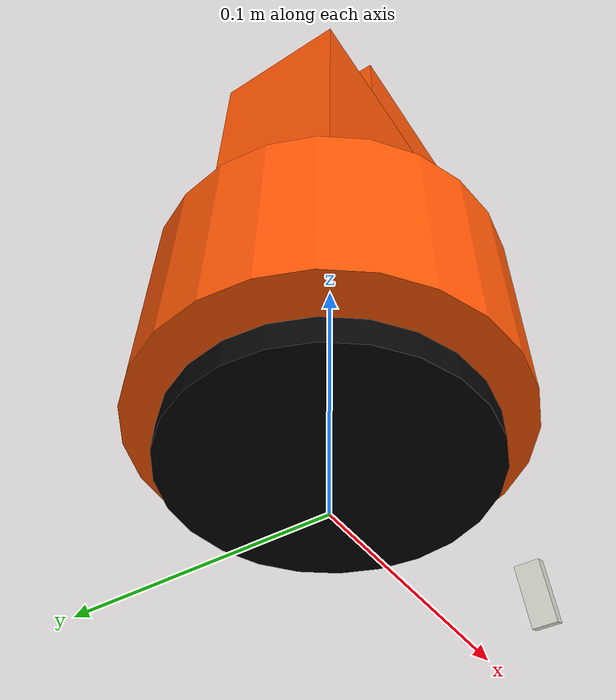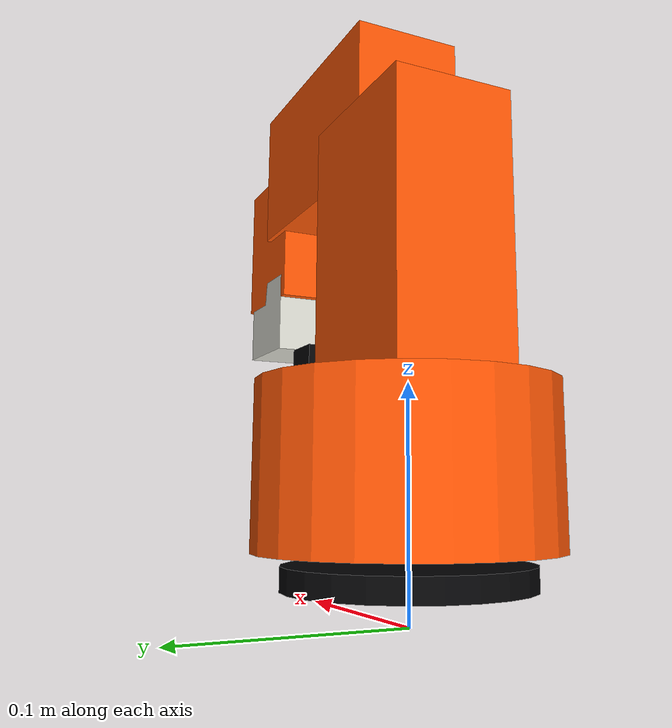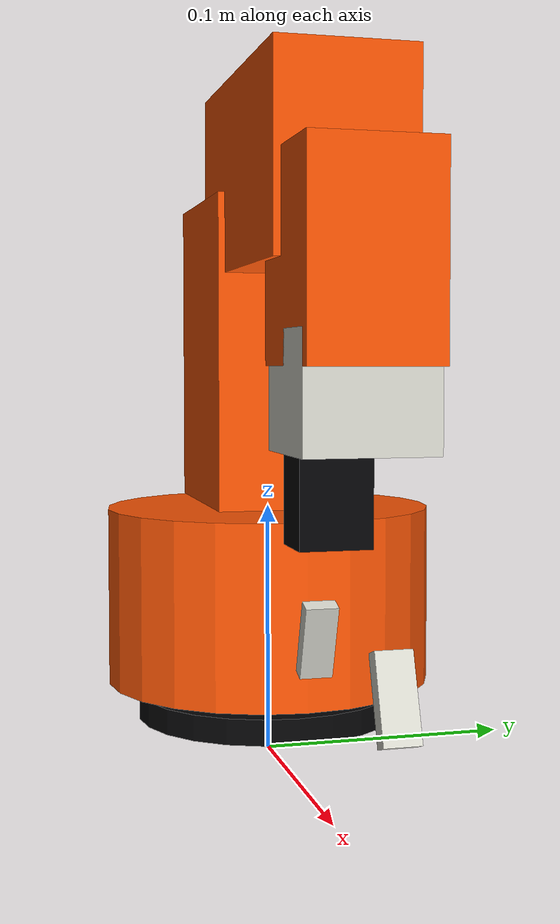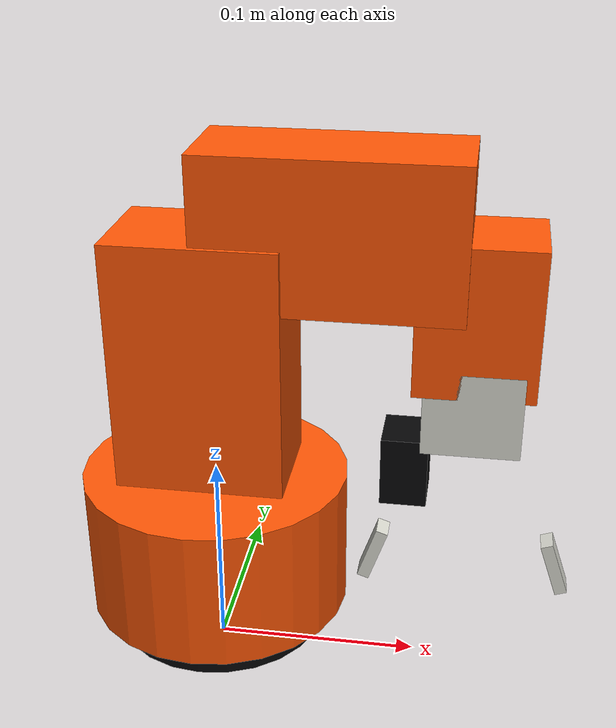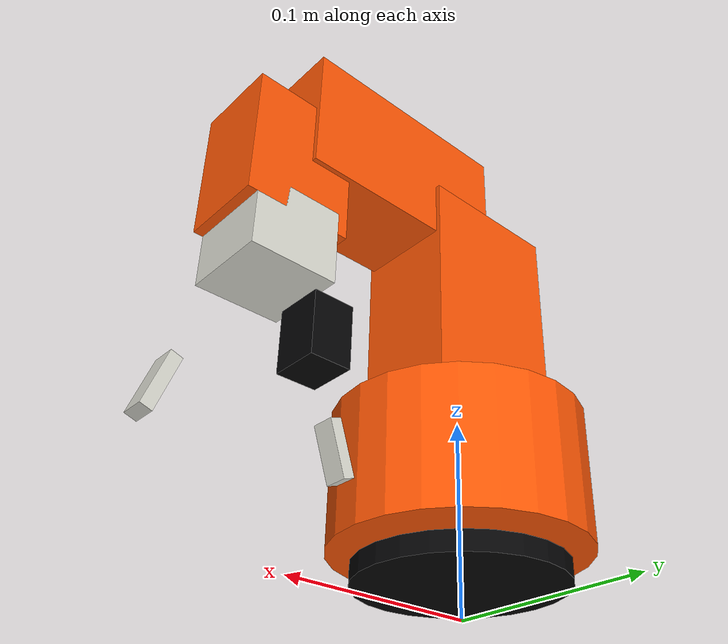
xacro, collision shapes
<?xml version="1.0"?>
<robot xmlns:xacro="http://www.ros.org/wiki/xacro" name="unoq_braccio">
  <xacro:arg name="controllers_file" default=""/>
  <xacro:arg name="mesh_dir" default=""/>
  <!-- For joint_state_publisher_gui only. Hides the left finger slider and drives it from "gripper". -->
  <xacro:arg name="gui_mimic" default="false"/>

  <material name="orange"><color rgba="1.0 0.34 0.02 1"/></material>
  <material name="white"><color rgba="0.86 0.86 0.82 1"/></material>
  <material name="black"><color rgba="0.02 0.02 0.025 1"/></material>
  <material name="lens_blue"><color rgba="0.08 0.28 0.55 1"/></material>

  <xacro:macro name="box_inertial" params="mass x y z">
    <inertial>
      <mass value="${mass}"/>
      <inertia
        ixx="${mass * (y * y + z * z) / 12.0}"
        iyy="${mass * (x * x + z * z) / 12.0}"
        izz="${mass * (x * x + y * y) / 12.0}"
        ixy="0" ixz="0" iyz="0"/>
    </inertial>
  </xacro:macro>

  <xacro:macro name="mesh_visual" params="filename material x y z rr rp ry">
    <visual>
      <origin xyz="${x} ${y} ${z}" rpy="${rr} ${rp} ${ry}"/>
      <geometry>
        <mesh filename="file://$(arg mesh_dir)/${filename}" scale="0.001 0.001 0.001"/>
      </geometry>
      <material name="${material}"/>
    </visual>
  </xacro:macro>

  <link name="world"/>

  <link name="base_link">
    <visual>
      <geometry><cylinder length="0.01" radius="0.053"/></geometry>
      <material name="black"/>
    </visual>
    <collision>
      <geometry><cylinder length="0.01" radius="0.053"/></geometry>
    </collision>
    <inertial>
      <mass value="2"/>
      <inertia ixx="0.004" ixy="0" ixz="0" iyy="0.004" iyz="0" izz="0.004"/>
    </inertial>
  </link>

  <joint name="base_fixed" type="fixed">
    <parent link="world"/>
    <child link="base_link"/>
    <origin xyz="0 0 0.02" rpy="0 0 -1.5708"/>
  </joint>

  <link name="braccio_base_link">
    <xacro:mesh_visual filename="braccio_base.stl" material="orange" x="0" y="0.004" z="0" rr="0" rp="0" ry="3.1416"/>
    <collision>
      <origin xyz="0 0 0.035"/>
      <geometry><cylinder radius="0.065" length="0.07"/></geometry>
    </collision>
    <inertial>
      <mass value="2"/>
      <inertia ixx="0.004" ixy="0" ixz="0" iyy="0.004" iyz="0" izz="0.004"/>
    </inertial>
  </link>

  <link name="shoulder_link">
    <xacro:mesh_visual filename="braccio_shoulder.stl" material="orange" x="-0.0045" y="0.0055" z="-0.026" rr="0" rp="0" ry="0"/>
    <collision>
      <origin xyz="0 0 0.06"/>
      <geometry><box size="0.055 0.08 0.12"/></geometry>
    </collision>
    <xacro:box_inertial mass="0.1" x="0.055" y="0.08" z="0.12"/>
  </link>

  <link name="elbow_link">
    <xacro:mesh_visual filename="braccio_elbow.stl" material="orange" x="-0.0045" y="0.005" z="-0.025" rr="0" rp="0" ry="0"/>
    <collision>
      <origin xyz="0 0 0.06"/>
      <geometry><box size="0.05 0.07 0.12"/></geometry>
    </collision>
    <xacro:box_inertial mass="0.1" x="0.05" y="0.07" z="0.12"/>
  </link>

  <link name="wrist_pitch_link">
    <xacro:mesh_visual filename="braccio_wrist_pitch.stl" material="orange" x="0.003" y="-0.0004" z="-0.024" rr="0" rp="0" ry="0"/>
    <collision>
      <origin xyz="0 0 0.035"/>
      <geometry><box size="0.045 0.055 0.07"/></geometry>
    </collision>
    <xacro:box_inertial mass="0.08" x="0.045" y="0.055" z="0.07"/>
  </link>

  <link name="wrist_roll_link">
    <xacro:mesh_visual filename="braccio_wrist_roll.stl" material="white" x="0.006" y="0" z="0" rr="0" rp="0" ry="0"/>
    <collision>
      <origin xyz="0 0 0.018"/>
      <geometry><box size="0.045 0.045 0.04"/></geometry>
    </collision>
    <xacro:box_inertial mass="0.08" x="0.045" y="0.045" z="0.04"/>
  </link>

  <link name="right_gripper_link">
    <xacro:mesh_visual filename="braccio_right_gripper.stl" material="white" x="0" y="-0.012" z="0.010" rr="0" rp="1.5708" ry="0"/>
    <collision>
      <origin xyz="0.0836 0 0.0110" rpy="0 -0.2198 0"/>
      <geometry><box size="0.028 0.012 0.006"/></geometry>
    </collision>
    <xacro:box_inertial mass="0.03" x="0.08" y="0.012" z="0.014"/>
  </link>

  <link name="left_gripper_link">
    <xacro:mesh_visual filename="braccio_left_gripper.stl" material="white" x="0" y="-0.012" z="0" rr="0" rp="1.5708" ry="0"/>
    <!-- Mirror of the right finger pad. -->
    <collision>
      <origin xyz="0.0836 0 -0.0110" rpy="0 0.2198 0"/>
      <geometry><box size="0.028 0.012 0.006"/></geometry>
    </collision>
    <xacro:box_inertial mass="0.03" x="0.08" y="0.012" z="0.014"/>
  </link>

  <link name="camera_link">
    <visual>
      <origin xyz="0 0 0"/>
      <geometry><box size="0.034 0.026 0.022"/></geometry>
      <material name="black"/>
    </visual>
    <visual>
      <origin xyz="0.018 0 0" rpy="0 1.5708 0"/>
      <geometry><cylinder radius="0.008" length="0.006"/></geometry>
      <material name="lens_blue"/>
    </visual>
    <collision><geometry><box size="0.034 0.026 0.022"/></geometry></collision>
    <xacro:box_inertial mass="0.04" x="0.034" y="0.026" z="0.022"/>
  </link>

  <joint name="base" type="revolute">
    <axis xyz="0 0 1"/>
    <limit effort="10" lower="-1.5708" upper="1.5708" velocity="2"/>
    <origin xyz="0 0 0.01" rpy="0 0 0"/>
    <parent link="base_link"/>
    <child link="braccio_base_link"/>
    <dynamics damping="0.1" friction="0.001"/>
  </joint>

  <joint name="shoulder" type="revolute">
    <axis xyz="1 0 0"/>
    <limit effort="10" lower="0.2618" upper="2.8798" velocity="2"/>
    <origin xyz="0 -0.002 0.072" rpy="-1.5708 0 0"/>
    <parent link="braccio_base_link"/>
    <child link="shoulder_link"/>
    <dynamics damping="0.1" friction="0.001"/>
  </joint>

  <joint name="elbow" type="revolute">
    <axis xyz="1 0 0"/>
    <limit effort="10" lower="0.0" upper="3.1416" velocity="2"/>
    <origin xyz="0 0 0.125" rpy="-1.5708 0 0"/>
    <parent link="shoulder_link"/>
    <child link="elbow_link"/>
    <dynamics damping="0.1" friction="0.001"/>
  </joint>

  <joint name="wrist_vertical" type="revolute">
    <axis xyz="1 0 0"/>
    <limit effort="10" lower="0.0" upper="3.1416" velocity="2"/>
    <origin xyz="0 0 0.125" rpy="-1.5708 0 0"/>
    <parent link="elbow_link"/>
    <child link="wrist_pitch_link"/>
    <dynamics damping="0.1" friction="0.001"/>
  </joint>

  <joint name="wrist_rotation" type="revolute">
    <axis xyz="0 0 -1"/>
    <limit effort="5" lower="-1.5708" upper="1.5708" velocity="2"/>
    <origin xyz="0 0 0.06" rpy="0 0 1.5708"/>
    <parent link="wrist_pitch_link"/>
    <child link="wrist_roll_link"/>
    <dynamics damping="0.1" friction="0.001"/>
  </joint>

  <joint name="gripper" type="revolute">
    <axis xyz="0 -1 0"/>
    <limit effort="1" lower="0.1750" upper="1.2741" velocity="2"/>
    <origin xyz="0.010 0 0.03" rpy="0 -0.2967 0"/>
    <parent link="wrist_roll_link"/>
    <child link="right_gripper_link"/>
    <dynamics damping="0.1" friction="0.001"/>
  </joint>

  <joint name="left_gripper" type="revolute">
    <axis xyz="0 1 0"/>
    <!-- Driven with the same angle as "gripper" by joint_trajectory_bridge. The flipped
         frame (pi + 0.2967) and reversed axis make equal angles a mirror image. -->
    <limit effort="1" lower="0.1750" upper="1.2741" velocity="2"/>
    <origin xyz="-0.010 0 0.03" rpy="0 3.4383 0"/>
    <parent link="wrist_roll_link"/>
    <child link="left_gripper_link"/>
    <xacro:if value="$(arg gui_mimic)">
      <mimic joint="gripper" multiplier="1" offset="0"/>
    </xacro:if>
    <dynamics damping="0.1" friction="0.001"/>
  </joint>

  <joint name="camera_mount" type="fixed">
    <parent link="wrist_roll_link"/>
    <child link="camera_link"/>
    <origin xyz="0.03 0 0.055" rpy="0 -1.5708 0"/>
  </joint>

  <ros2_control name="GazeboSystem" type="system">
    <hardware>
      <plugin>gz_ros2_control/GazeboSimSystem</plugin>
    </hardware>
    <joint name="base">
      <command_interface name="position"/>
      <state_interface name="position">
        <param name="initial_value">0.0</param>
      </state_interface>
      <state_interface name="velocity"/>
    </joint>
    <joint name="shoulder">
      <command_interface name="position"/>
      <state_interface name="position">
        <param name="initial_value">1.5708</param>
      </state_interface>
      <state_interface name="velocity"/>
    </joint>
    <joint name="elbow">
      <command_interface name="position"/>
      <state_interface name="position">
        <param name="initial_value">1.5708</param>
      </state_interface>
      <state_interface name="velocity"/>
    </joint>
    <joint name="wrist_vertical">
      <command_interface name="position"/>
      <state_interface name="position">
        <param name="initial_value">1.5708</param>
      </state_interface>
      <state_interface name="velocity"/>
    </joint>
    <joint name="wrist_rotation">
      <command_interface name="position"/>
      <state_interface name="position">
        <param name="initial_value">0.0</param>
      </state_interface>
      <state_interface name="velocity"/>
    </joint>
    <joint name="gripper">
      <command_interface name="position"/>
      <state_interface name="position">
        <param name="initial_value">0.3399</param>
      </state_interface>
      <state_interface name="velocity"/>
    </joint>
    <joint name="left_gripper">
      <command_interface name="position"/>
      <state_interface name="position">
        <param name="initial_value">0.3399</param>
      </state_interface>
      <state_interface name="velocity"/>
    </joint>
  </ros2_control>

  <!-- Servos hold their pose; do not let gravity sag the simulated arm. -->
  <xacro:macro name="no_gravity" params="link">
    <gazebo reference="${link}"><gravity>false</gravity></gazebo>
  </xacro:macro>
  <xacro:no_gravity link="braccio_base_link"/>
  <xacro:no_gravity link="shoulder_link"/>
  <xacro:no_gravity link="elbow_link"/>
  <xacro:no_gravity link="wrist_pitch_link"/>
  <xacro:no_gravity link="wrist_roll_link"/>
  <xacro:no_gravity link="right_gripper_link"/>
  <xacro:no_gravity link="left_gripper_link"/>
  <xacro:no_gravity link="camera_link"/>

  <!-- High-friction finger pads so a squeezed cube does not slide out. -->
  <xacro:macro name="finger_friction" params="link">
    <gazebo reference="${link}">
      <mu1>2.0</mu1>
      <mu2>2.0</mu2>
    </gazebo>
  </xacro:macro>
  <xacro:finger_friction link="right_gripper_link"/>
  <xacro:finger_friction link="left_gripper_link"/>

  <xacro:macro name="cube_grasp" params="color">
    <gazebo>
      <plugin filename="gz-sim-detachable-joint-system" name="gz::sim::systems::DetachableJoint">
        <parent_link>wrist_roll_link</parent_link>
        <child_model>${color}_cube</child_model>
        <child_link>link</child_link>
        <attach_topic>/sim/grasp/${color}_cube/attach</attach_topic>
        <detach_topic>/sim/grasp/${color}_cube/detach</detach_topic>
        <output_topic>/sim/grasp/${color}_cube/state</output_topic>
      </plugin>
    </gazebo>
  </xacro:macro>
  <xacro:cube_grasp color="red"/>
  <xacro:cube_grasp color="blue"/>
  <xacro:cube_grasp color="yellow"/>

  <!-- Gripper-mounted camera (matches the real Grove Vision AI on the gripper). -->
  <gazebo reference="camera_link">
    <sensor name="gripper_camera" type="camera">
      <always_on>true</always_on>
      <update_rate>15</update_rate>
      <visualize>false</visualize>
      <topic>vision/gripper/image_raw</topic>
      <camera>
        <horizontal_fov>1.2</horizontal_fov>
        <image><width>320</width><height>240</height><format>R8G8B8</format></image>
        <clip><near>0.03</near><far>3.0</far></clip>
      </camera>
    </sensor>
  </gazebo>

  <gazebo>
    <plugin filename="libgz_ros2_control-system.so" name="gz_ros2_control::GazeboSimROS2ControlPlugin">
      <parameters>$(arg controllers_file)</parameters>
    </plugin>
  </gazebo>
</robot>
